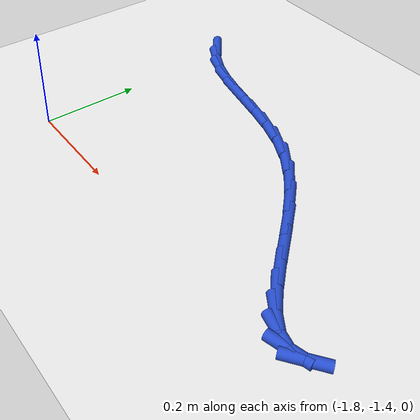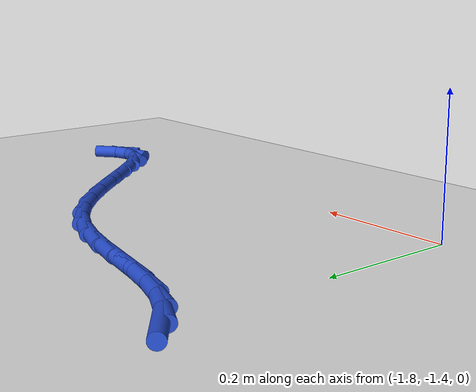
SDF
<sdf version="1.6">
 <world name="default">
  <model name="ground_plane">
   <static>1</static>
   <link name="link">
    <collision name="collision">
     <geometry><plane><normal>0 0 1</normal><size>100 100</size></plane></geometry>
     <surface><friction><ode><mu>100</mu><mu2>50</mu2></ode></friction></surface>
    </collision>
    <visual name="visual">
     <cast_shadows>0</cast_shadows>
     <geometry><plane><normal>0 0 1</normal><size>100 100</size></plane></geometry>
     <material>
      <script><uri>file://media/materials/scripts/gazebo.material</uri><name>Gazebo/WhiteGlow</name></script>
     </material>
    </visual>
   </link>
  </model>
  <model name="line">
   <link name="link_102">
    <pose>-1.812401370978215 -0.9577928511224976 0.01 0 1.57 -0.6789425558330618</pose>
    <collision name="collision">
     <geometry><cylinder><radius>0.01</radius><length>0.08</length></cylinder></geometry>
    </collision>
    <visual name="visual">
     <material>
      <script><name>Gazebo/Blue</name><uri>file://media/materials/scripts/gazebo.material</uri></script>
     </material>
     <geometry><cylinder><radius>0.01</radius><length>0.08</length></cylinder></geometry>
    </visual>
   </link>
   <link name="link_103">
    <pose>-1.7800447960539092 -0.9839018220499978 0.01 0 1.57 -0.48816862874105477</pose>
    <collision name="collision">
     <geometry><cylinder><radius>0.01</radius><length>0.08</length></cylinder></geometry>
    </collision>
    <visual name="visual">
     <material>
      <script><name>Gazebo/Blue</name><uri>file://media/materials/scripts/gazebo.material</uri></script>
     </material>
     <geometry><cylinder><radius>0.01</radius><length>0.08</length></cylinder></geometry>
    </visual>
   </link>
   <link name="link_104">
    <pose>-1.7432074370436421 -1.0034638609020714 0.01 0 1.57 -0.3337459284437555</pose>
    <collision name="collision">
     <geometry><cylinder><radius>0.01</radius><length>0.08</length></cylinder></geometry>
    </collision>
    <visual name="visual">
     <material>
      <script><name>Gazebo/Blue</name><uri>file://media/materials/scripts/gazebo.material</uri></script>
     </material>
     <geometry><cylinder><radius>0.01</radius><length>0.08</length></cylinder></geometry>
    </visual>
   </link>
   <link name="link_105">
    <pose>-1.7024090179417157 -1.0176093124147085 0.01 0 1.57 -0.23869276200514036</pose>
    <collision name="collision">
     <geometry><cylinder><radius>0.01</radius><length>0.08</length></cylinder></geometry>
    </collision>
    <visual name="visual">
     <material>
      <script><name>Gazebo/Blue</name><uri>file://media/materials/scripts/gazebo.material</uri></script>
     </material>
     <geometry><cylinder><radius>0.01</radius><length>0.08</length></cylinder></geometry>
    </visual>
   </link>
   <link name="link_106">
    <pose>-1.658555117830301 -1.0282803530344893 0.01 0 1.57 -0.19621319979628593</pose>
    <collision name="collision">
     <geometry><cylinder><radius>0.01</radius><length>0.08</length></cylinder></geometry>
    </collision>
    <visual name="visual">
     <material>
      <script><name>Gazebo/Blue</name><uri>file://media/materials/scripts/gazebo.material</uri></script>
     </material>
     <geometry><cylinder><radius>0.01</radius><length>0.08</length></cylinder></geometry>
    </visual>
   </link>
   <link name="link_107">
    <pose>-1.6125536602918662 -1.037424091991686 0.01 0 1.57 -0.19974182880665384</pose>
    <collision name="collision">
     <geometry><cylinder><radius>0.01</radius><length>0.08</length></cylinder></geometry>
    </collision>
    <visual name="visual">
     <material>
      <script><name>Gazebo/Blue</name><uri>file://media/materials/scripts/gazebo.material</uri></script>
     </material>
     <geometry><cylinder><radius>0.01</radius><length>0.08</length></cylinder></geometry>
    </visual>
   </link>
   <link name="link_108">
    <pose>-1.5653125689088792 -1.0469876385165715 0.01 0 1.57 -0.245715733587195</pose>
    <collision name="collision">
     <geometry><cylinder><radius>0.01</radius><length>0.08</length></cylinder></geometry>
    </collision>
    <visual name="visual">
     <material>
      <script><name>Gazebo/Blue</name><uri>file://media/materials/scripts/gazebo.material</uri></script>
     </material>
     <geometry><cylinder><radius>0.01</radius><length>0.08</length></cylinder></geometry>
    </visual>
   </link>
   <link name="link_109">
    <pose>-1.5177397672638067 -1.0589181018394187 0.01 0 1.57 -0.33279655130228775</pose>
    <collision name="collision">
     <geometry><cylinder><radius>0.01</radius><length>0.08</length></cylinder></geometry>
    </collision>
    <visual name="visual">
     <material>
      <script><name>Gazebo/Blue</name><uri>file://media/materials/scripts/gazebo.material</uri></script>
     </material>
     <geometry><cylinder><radius>0.01</radius><length>0.08</length></cylinder></geometry>
    </visual>
   </link>
   <link name="link_110">
    <pose>-1.4707431789391157 -1.0751625911905003 0.01 0 1.57 -0.4592329466374295</pose>
    <collision name="collision">
     <geometry><cylinder><radius>0.01</radius><length>0.08</length></cylinder></geometry>
    </collision>
    <visual name="visual">
     <material>
      <script><name>Gazebo/Blue</name><uri>file://media/materials/scripts/gazebo.material</uri></script>
     </material>
     <geometry><cylinder><radius>0.01</radius><length>0.08</length></cylinder></geometry>
    </visual>
   </link>
   <link name="link_111">
    <pose>-1.425230727517273 -1.0976682158000897 0.01 0 1.57 -0.6108309820504617</pose>
    <collision name="collision">
     <geometry><cylinder><radius>0.01</radius><length>0.08</length></cylinder></geometry>
    </collision>
    <visual name="visual">
     <material>
      <script><name>Gazebo/Blue</name><uri>file://media/materials/scripts/gazebo.material</uri></script>
     </material>
     <geometry><cylinder><radius>0.01</radius><length>0.08</length></cylinder></geometry>
    </visual>
   </link>
   <link name="link_112">
    <pose>-1.382009092843484 -1.127930123731113 0.01 0 1.57 -0.7308542162275113</pose>
    <collision name="collision">
     <geometry><cylinder><radius>0.01</radius><length>0.08</length></cylinder></geometry>
    </collision>
    <visual name="visual">
     <material>
      <script><name>Gazebo/Blue</name><uri>file://media/materials/scripts/gazebo.material</uri></script>
     </material>
     <geometry><cylinder><radius>0.01</radius><length>0.08</length></cylinder></geometry>
    </visual>
   </link>
   <link name="link_113">
    <pose>-1.3412238705600072 -1.1644923235869094 0.01 0 1.57 -0.8076782384119696</pose>
    <collision name="collision">
     <geometry><cylinder><radius>0.01</radius><length>0.08</length></cylinder></geometry>
    </collision>
    <visual name="visual">
     <material>
      <script><name>Gazebo/Blue</name><uri>file://media/materials/scripts/gazebo.material</uri></script>
     </material>
     <geometry><cylinder><radius>0.01</radius><length>0.08</length></cylinder></geometry>
    </visual>
   </link>
   <link name="link_114">
    <pose>-1.3027553306258153 -1.2047143862091723 0.01 0 1.57 -0.8493794196460572</pose>
    <collision name="collision">
     <geometry><cylinder><radius>0.01</radius><length>0.08</length></cylinder></geometry>
    </collision>
    <visual name="visual">
     <material>
      <script><name>Gazebo/Blue</name><uri>file://media/materials/scripts/gazebo.material</uri></script>
     </material>
     <geometry><cylinder><radius>0.01</radius><length>0.08</length></cylinder></geometry>
    </visual>
   </link>
   <link name="link_115">
    <pose>-1.2664830284501822 -1.2459526926253421 0.01 0 1.57 -0.8586257522154652</pose>
    <collision name="collision">
     <geometry><cylinder><radius>0.01</radius><length>0.08</length></cylinder></geometry>
    </collision>
    <visual name="visual">
     <material>
      <script><name>Gazebo/Blue</name><uri>file://media/materials/scripts/gazebo.material</uri></script>
     </material>
     <geometry><cylinder><radius>0.01</radius><length>0.08</length></cylinder></geometry>
    </visual>
   </link>
   <link name="link_116">
    <pose>-1.2322865194423802 -1.2855636238628596 0.01 0 1.57 -0.8312187820102228</pose>
    <collision name="collision">
     <geometry><cylinder><radius>0.01</radius><length>0.08</length></cylinder></geometry>
    </collision>
    <visual name="visual">
     <material>
      <script><name>Gazebo/Blue</name><uri>file://media/materials/scripts/gazebo.material</uri></script>
     </material>
     <geometry><cylinder><radius>0.01</radius><length>0.08</length></cylinder></geometry>
    </visual>
   </link>
   <link name="link_117">
    <pose>-1.2000453590116837 -1.320903560949164 0.01 0 1.57 -0.7517396359911928</pose>
    <collision name="collision">
     <geometry><cylinder><radius>0.01</radius><length>0.08</length></cylinder></geometry>
    </collision>
    <visual name="visual">
     <material>
      <script><name>Gazebo/Blue</name><uri>file://media/materials/scripts/gazebo.material</uri></script>
     </material>
     <geometry><cylinder><radius>0.01</radius><length>0.08</length></cylinder></geometry>
    </visual>
   </link>
   <link name="link_118">
    <pose>-1.1696391025673656 -1.3493288849116967 0.01 0 1.57 -0.5816839639103729</pose>
    <collision name="collision">
     <geometry><cylinder><radius>0.01</radius><length>0.08</length></cylinder></geometry>
    </collision>
    <visual name="visual">
     <material>
      <script><name>Gazebo/Blue</name><uri>file://media/materials/scripts/gazebo.material</uri></script>
     </material>
     <geometry><cylinder><radius>0.01</radius><length>0.08</length></cylinder></geometry>
    </visual>
   </link>
   <link name="link_119">
    <pose>-1.1409473055186994 -1.3681959767778982 0.01 0 1.57 -0.2413865208786741</pose>
    <collision name="collision">
     <geometry><cylinder><radius>0.01</radius><length>0.08</length></cylinder></geometry>
    </collision>
    <visual name="visual">
     <material>
      <script><name>Gazebo/Blue</name><uri>file://media/materials/scripts/gazebo.material</uri></script>
     </material>
     <geometry><cylinder><radius>0.01</radius><length>0.08</length></cylinder></geometry>
    </visual>
   </link>
   <link name="link_120">
    <pose>-1.11384914530739 -1.3748671849579472 0.01 0 1.57 0.2617078314445778</pose>
    <collision name="collision">
     <geometry><cylinder><radius>0.01</radius><length>0.08</length></cylinder></geometry>
    </collision>
    <visual name="visual">
     <material>
      <script><name>Gazebo/Blue</name><uri>file://media/materials/scripts/gazebo.material</uri></script>
     </material>
     <geometry><cylinder><radius>0.01</radius><length>0.08</length></cylinder></geometry>
    </visual>
   </link>
   <link name="link_121">
    <pose>-1.0881429226713335 -1.3679817458469021 0.01 0 1.57 0.6544374377137387</pose>
    <collision name="collision">
     <geometry><cylinder><radius>0.01</radius><length>0.08</length></cylinder></geometry>
    </collision>
    <visual name="visual">
     <material>
      <script><name>Gazebo/Blue</name><uri>file://media/materials/scripts/gazebo.material</uri></script>
     </material>
     <geometry><cylinder><radius>0.01</radius><length>0.08</length></cylinder></geometry>
    </visual>
   </link>
  </model>
 </world>
</sdf>
